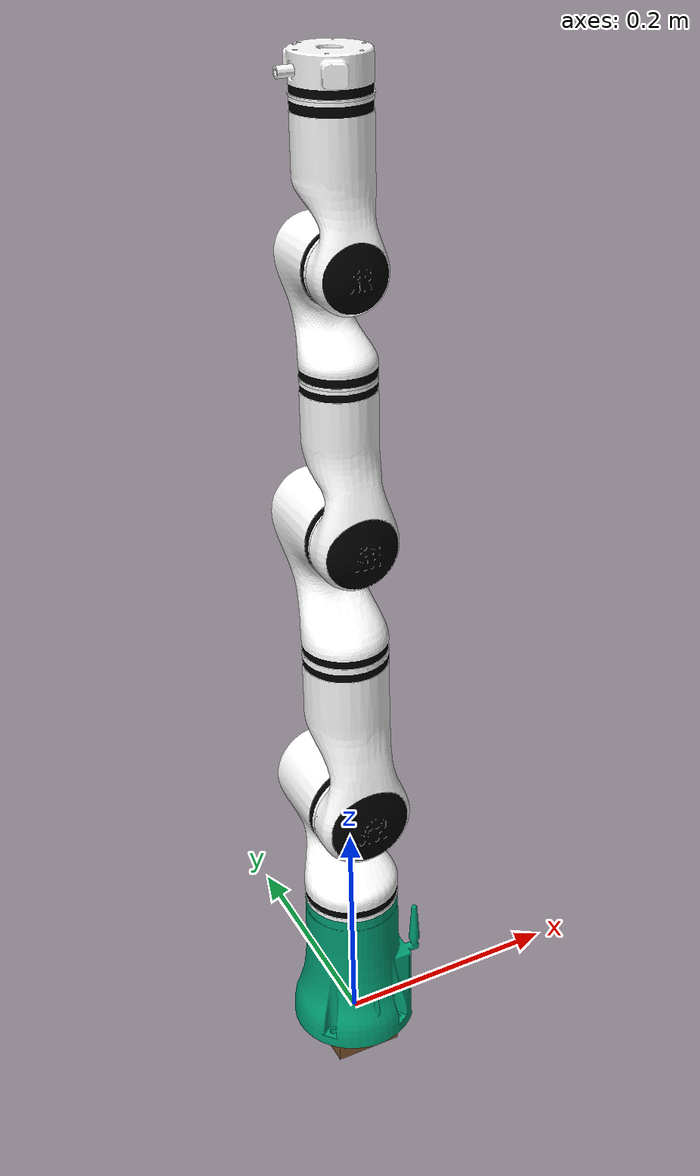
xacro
<?xml version='1.0' encoding='UTF-8'?>
<robot xmlns:xacro="http://www.ros.org/wiki/xacro" name="rm_65">
  <!-- link6_type-->
  <xacro:arg name="link6_type" default="Link6"/>
  <!-- arg->property-->
  <xacro:property name="link6_type" value="$(arg link6_type)"/>
  <xacro:include filename="$(find rm_description)/urdf/RM65/rm_65.transmission.xacro"/>
  <xacro:include filename="$(find rm_description)/urdf/RM65/rm_65.gazebo.xacro"/>
  <!-- Inertial matrix-->
  <xacro:macro name="inertial_matrix" params="mass">
    <inertial>
      <mass value="${mass}"/>
      <inertia ixx="1.0" ixy="0.0" ixz="0.0" iyy="0.5" iyz="0.0" izz="1.0"/>
    </inertial>
  </xacro:macro>
  <xacro:macro name="Box_inertial_matrix" params="m l w h">
    <inertial>
      <mass value="${m}"/>
      <inertia ixx="${m*(h*h + l*l)/12}" ixy="0" ixz="0" iyy="${m*(w*w + l*l)/12}" iyz="0" izz="${m*(w*w + h*h)/12}"/>
    </inertial>
  </xacro:macro>
  <link name="dummy">
  </link>
  <!-- ///////////////////////////////////////   bottom_joint   //////////////////////////////////////////-->
  <joint name="bottom_joint" type="fixed">
    <origin xyz="0 0 0" rpy="0 0 0"/>
    <parent link="base_link"/>
    <child link="bottom_link"/>
  </joint>
  <link name="bottom_link">
    <visual>
      <origin xyz=" 0 0 -0.02"  rpy="0 0 0"/>
      <geometry>
        <box size="0.06 0.06 0.02" />
      </geometry>
      <material name="Brown" />
    </visual>
    <collision>
      <origin xyz="0 0 0.01" rpy="0 0 0"/>
      <geometry>
        <box size="0.06 0.06 0.02"/>
      </geometry>
    </collision>
    <xacro:Box_inertial_matrix m="500" l="1" w="1" h="0.02"/>
  </link>
  <link name="base_link">
    <inertial>
      <origin xyz="-0.00049987 -5.2709E-05 0.060019" rpy="0 0 0"/>
      <mass value="1.862"/>
      <inertia ixx="0.0017232" ixy="-3.1058E-06" ixz="3.7924E-05" iyy="0.0017051" iyz="-1.3691E-06" izz="0.00090158"/>
    </inertial>
    <visual>
      <origin rpy="0 0 0" xyz="0 0 0"/>
      <geometry>
        <mesh filename="package://rm_description/meshes/dae/rm65/base_link.dae"/>
      </geometry>
    </visual>
    <collision>
      <origin xyz="0 0 0" rpy="0 0 0"/>
      <geometry>
        <mesh filename="package://rm_description/meshes/RM65/base_link.STL"/>
      </geometry>
    </collision>
  </link>
  <gazebo reference="base_link">
    <mu1 value="200000.0"/>
    <mu2 value="200000.0"/>
    <kp value="100000000.0"/>
    <kd value="1.0"/>
  </gazebo>
  <joint name="dummy_joint" type="fixed">
    <parent link="dummy"/>
    <child link="base_link"/>
  </joint>
  <link name="Link1">
    <inertial>
      <origin xyz="0.000941 0.007803 -0.10744" rpy="0 0 0"/>
      <mass value="1.51"/>
      <inertia ixx="0.002662223" ixy="-0.000026849" ixz="-0.000013775" iyy="0.002331685" iyz="-0.000078667" izz="0.001663712"/>
    </inertial>
    <visual>
      <origin
        xyz="0 0 0"
        rpy="0 0 0" />
      <geometry>
        <mesh
          filename="package://rm_description/meshes/dae/rm65/link_1.dae" />
      </geometry>
    </visual>
    <collision>
      <origin xyz="0 0 0" rpy="0 0 0"/>
      <geometry>
        <mesh filename="package://rm_description/meshes/RM65/link1.STL"/>
      </geometry>
    </collision>
  </link>
  <joint name="joint1" type="revolute">
    <origin xyz="0 0 0.2405" rpy="0 0 0"/>
    <parent link="base_link"/>
    <child link="Link1"/>
    <axis xyz="0 0 1"/>
    <limit lower="-3.106" upper="3.106" effort="60" velocity="3.14"/>
    <dynamics damping="50" friction="1"/>
  </joint>
  <link name="Link2">
    <inertial>
      <origin xyz="0.183722 0.000103 -0.001665" rpy="0 0 0"/>
      <mass value="1.653"/>
      <inertia ixx="0.001706953" ixy="-0.000006995" ixz="0.001809254" iyy="0.014713776" iyz="0.000006223" izz="0.014239805"/>
    </inertial>
    <visual>
      <origin
        xyz="0 0 0"
        rpy="0 0 0" />
      <geometry>
        <mesh
          filename="package://rm_description/meshes/dae/rm65/link_2.dae" />
      </geometry>
    </visual>
    <collision>
      <origin xyz="0 0 0" rpy="0 0 0"/>
      <geometry>
        <mesh filename="package://rm_description/meshes/RM65/link2.STL"/>
      </geometry>
    </collision>
  </link>
  <joint name="joint2" type="revolute">
    <origin rpy="-1.57079265345464 -1.57079265358979 3.14159265345464" xyz="0 0 0"/>
    <parent link="Link1"/>
    <child link="Link2"/>
    <axis xyz="0 0 1"/>
    <limit lower="-2.2689" upper="2.2689" effort="60" velocity="3.14"/>
    <dynamics damping="50" friction="1"/>
  </joint>
  <link name="Link3">
    <inertial>
      <origin xyz="0.000029 -0.090105 0.004039" rpy="0 0 0"/>
      <mass value="0.726"/>
      <inertia ixx="0.001350874" ixy="0.000001069" ixz="-0.000000228" iyy="0.000360021" iyz="-0.000219904" izz="0.001331598"/>
    </inertial>
    <visual>
      <origin
        xyz="0 0 0"
        rpy="0 0 0" />
      <geometry>
        <mesh
          filename="package://rm_description/meshes/dae/rm65/link_3.dae" />
      </geometry>
    </visual>
    <collision>
      <origin xyz="0 0 0" rpy="0 0 0"/>
      <geometry>
        <mesh filename="package://rm_description/meshes/RM65/link3.STL"/>
      </geometry>
    </collision>
  </link>
  <joint name="joint3" type="revolute">
    <origin xyz="0.256 0 0" rpy="0 0 1.5708"/>
    <parent link="Link2"/>
    <child link="Link3"/>
    <axis xyz="0 0 1"/>
    <limit lower="-2.356" upper="2.356" effort="30" velocity="3.14"/>
    <dynamics damping="50" friction="1"/>
  </joint>
  <link name="Link4">
    <inertial>
      <origin xyz="0.000007 -0.009486 -0.008041" rpy="0 0 0"/>
      <mass value="0.671"/>
      <inertia ixx="0.000690221" ixy="-0.000000865" ixz="-0.000000692" iyy="0.000552834" iyz="0.000016411" izz="0.000425835"/>
    </inertial>
    <visual>
      <origin
        xyz="0 0 0"
        rpy="0 0 0" />
      <geometry>
        <mesh
          filename="package://rm_description/meshes/dae/rm65/link_4.dae" />
      </geometry>
    </visual>
    <collision>
      <origin xyz="0 0 0" rpy="0 0 0"/>
      <geometry>
        <mesh filename="package://rm_description/meshes/RM65/link4.STL"/>
      </geometry>
    </collision>
  </link>
  <joint name="joint4" type="revolute">
    <origin xyz="0 -0.21 0" rpy="1.5708 0 0"/>
    <parent link="Link3"/>
    <child link="Link4"/>
    <axis xyz="0 0 1"/>
    <limit lower="-3.106" upper="3.106" effort="10" velocity="3.14"/>
    <dynamics damping="50" friction="1"/>
  </joint>
  <link name="Link5">
    <inertial>
      <origin xyz="0.000032 -0.083769 0.002326" rpy="0 0 0"/>
      <mass value="0.647"/>
      <inertia ixx="0.000834052" ixy="0.000000952" ixz="-0.000000257" iyy="0.000281767" iyz="-0.000111750" izz="0.000821714"/>
    </inertial>
    <visual>
      <origin
        xyz="0 0 0"
        rpy="0 0 0" />
      <geometry>
        <mesh
          filename="package://rm_description/meshes/dae/rm65/link_5.dae" />
      </geometry>
    </visual>
    <collision>
      <origin xyz="0 0 0" rpy="0 0 0"/>
      <geometry>
        <mesh filename="package://rm_description/meshes/RM65/link5.STL"/>
      </geometry>
    </collision>
  </link>
  <joint name="joint5" type="revolute">
    <origin xyz="0 0 0" rpy="-1.5708 0 0"/>
    <parent link="Link4"/>
    <child link="Link5"/>
    <axis xyz="0 0 1"/>
    <limit lower="-2.234" upper="2.234" effort="10" velocity="3.14"/>
    <dynamics damping="50" friction="1"/>
  </joint>
  <xacro:if value="${ link6_type =='Link6' }">
    <link name="Link6">
      <inertial>
        <origin xyz="-0.000569 0.00029 -0.010569" rpy="0 0 0"/>
        <mass value="0.104"/>
        <inertia ixx="3.043E-05" ixy="2.622E-09" ixz="2.199E-08" iyy="3.604E-05" iyz="1.195E-08" izz="5.52E-05"/>
      </inertial>
      <visual>
        <origin
          xyz="0 0 0"
          rpy="0 0 0" />
        <geometry>
          <mesh
            filename="package://rm_description/meshes/dae/rm65/link_6_bi.dae" />
        </geometry>
      </visual>
      <collision>
        <origin xyz="0 0 0" rpy="0 0 0"/>
        <geometry>
          <mesh filename="package://rm_description/meshes/RM65/link6.STL"/>
        </geometry>
      </collision>
    </link>
    <joint name="joint6" type="revolute">
      <origin xyz="0 -0.144 0" rpy="1.5708 0 0"/>
      <parent link="Link5"/>
      <child link="Link6"/>
      <axis xyz="0 0 1"/>
      <limit lower="-6.28" upper="6.28" effort="10" velocity="3.14"/>
      <dynamics damping="50" friction="1"/>
    </joint>
  </xacro:if>
  <xacro:if value="${ link6_type =='Link6_6fb' }">
    <link name="Link6">
      <inertial>
        <origin xyz="-0.000569 0.00029 -0.010569" rpy="0 0 0"/>
        <mass value="0.14434"/>
        <inertia ixx="3.043E-05" ixy="2.622E-09" ixz="2.199E-08" iyy="3.604E-05" iyz="1.195E-08" izz="5.52E-05"/>
      </inertial>
      <visual>
        <origin
          xyz="0 0 0"
          rpy="0 0 0" />
        <geometry>
          <mesh
            filename="package://rm_description/meshes/dae/rm65/link_6_fb.dae" />
        </geometry>
      </visual>
      <collision>
        <origin xyz="0 0 0" rpy="0 0 0"/>
        <geometry>
          <mesh filename="package://rm_description/meshes/RM65/Link6_6fb.STL"/>
        </geometry>
      </collision>
    </link>
    <joint name="joint6" type="revolute">
      <origin xyz="0 -0.161 0" rpy="1.5708 0 0"/>
      <parent link="Link5"/>
      <child link="Link6"/>
      <axis xyz="0 0 1"/>
      <limit lower="-6.28" upper="6.28" effort="10" velocity="3.14"/>
    </joint>
  </xacro:if>
  <!-- Transmissions for ROS Control-->
  <xacro:macro name="transmission_block" params="joint_name">
    <transmission name="tran1">
      <type>transmission_interface/SimpleTransmission</type>
      <joint name="${joint_name}">
        <hardwareInterface>hardware_interface/PositionJointInterface</hardwareInterface>
      </joint>
      <actuator name="motor1">
        <hardwareInterface>hardware_interface/PositionJointInterface</hardwareInterface>
        <mechanicalReduction>1</mechanicalReduction>
      </actuator>
    </transmission>
  </xacro:macro>
  <xacro:transmission_block joint_name="joint1"/>
  <xacro:transmission_block joint_name="joint2"/>
  <xacro:transmission_block joint_name="joint3"/>
  <xacro:transmission_block joint_name="joint4"/>
  <xacro:transmission_block joint_name="joint5"/>
  <xacro:transmission_block joint_name="joint6"/>
  <!-- ros_control plugin-->
  <gazebo>
    <plugin name="gazebo_ros_control" filename="libgazebo_ros_control.so">
      <robotNamespace>/arm</robotNamespace>
      <robotSimType>gazebo_ros_control/DefaultRobotHWSim</robotSimType>
      <legacyModeNS>true</legacyModeNS>
    </plugin>
  </gazebo>
</robot>
